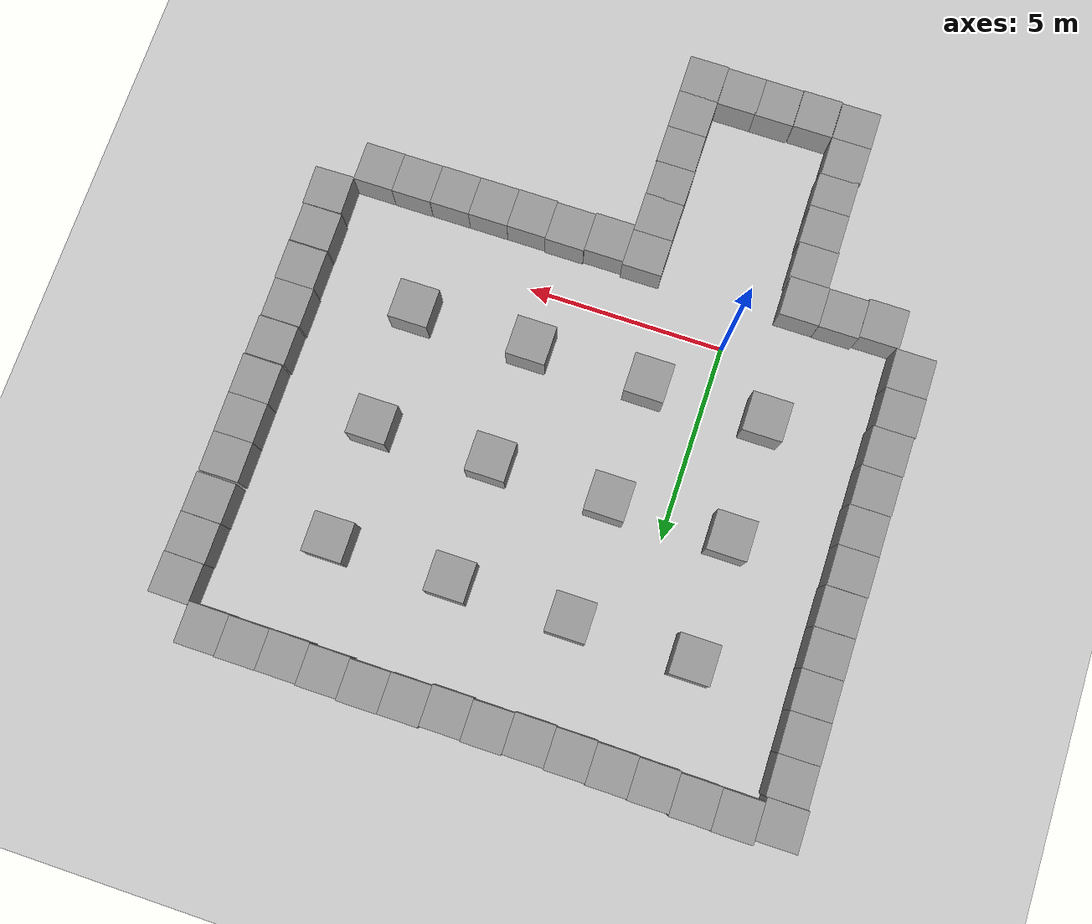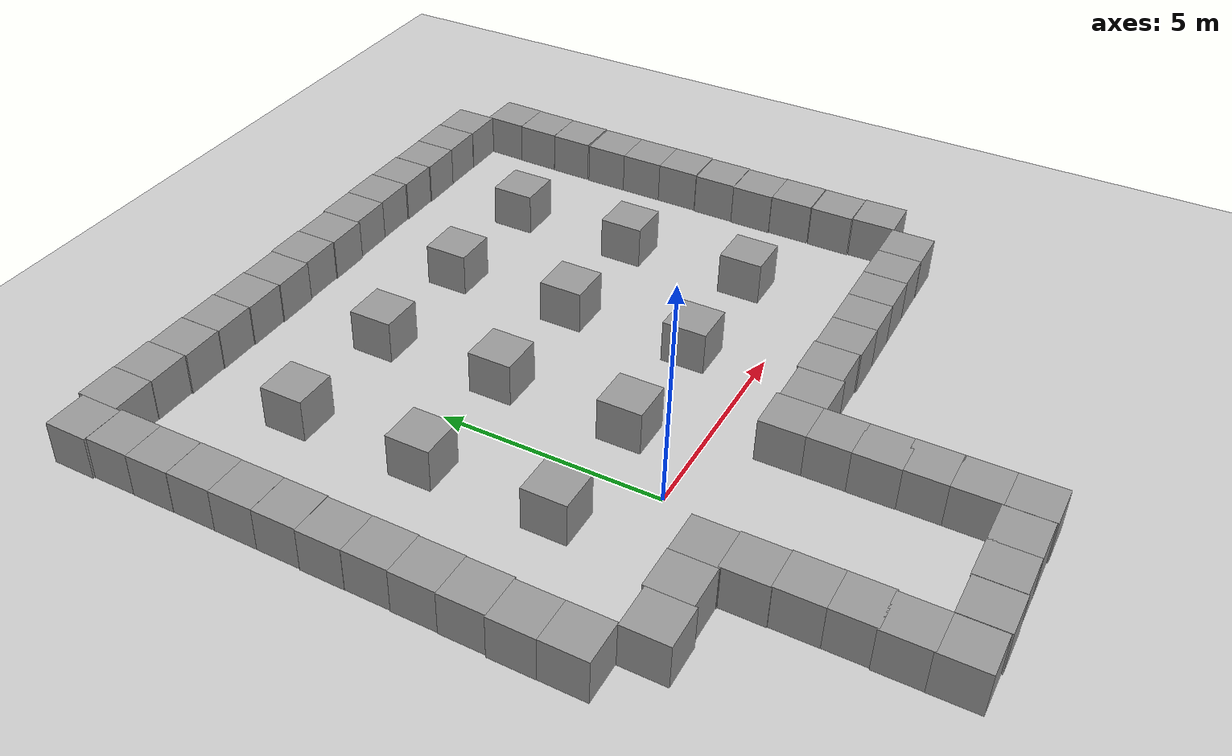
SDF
<sdf version="1.6">
 <world name="default">
  <light name="sun" type="directional">
   <pose>0 0 10 0 -0 0</pose>
   <diffuse>0.8 0.8 0.8 1</diffuse>
   <specular>0.2 0.2 0.2 1</specular>
   <attenuation>
    <range>1000</range>
    <constant>0.9</constant>
    <linear>0.01</linear>
    <quadratic>0.001</quadratic>
   </attenuation>
   <direction>-0.5 0.1 -0.9</direction>
  </light>
  <model name="ground_plane">
   <static>1</static>
   <link name="link">
    <collision name="collision">
     <geometry><plane><normal>0 0 1</normal><size>100 100</size></plane></geometry>
     <surface><friction><ode><mu>100</mu><mu2>50</mu2></ode></friction></surface>
    </collision>
    <visual name="visual">
     <cast_shadows>0</cast_shadows>
     <geometry><plane><normal>0 0 1</normal><size>100 100</size></plane></geometry>
     <material>
      <script><uri>file://media/materials/scripts/gazebo.material</uri><name>Gazebo/Grey</name></script>
     </material>
    </visual>
    <velocity_decay><linear>0</linear><angular>0</angular></velocity_decay>
   </link>
  </model>
  <physics name="default_physics" default="0" type="ode">
   <max_step_size>0.001</max_step_size>
   <real_time_factor>1</real_time_factor>
   <real_time_update_rate>1000</real_time_update_rate>
  </physics>
  <scene><ambient>0.4 0.4 0.4 1</ambient><background>0.7 0.7 0.7 1</background><shadows>1</shadows></scene>
  <spherical_coordinates>
   <surface_model>EARTH_WGS84</surface_model>
   <latitude_deg>0</latitude_deg>
   <longitude_deg>0</longitude_deg>
   <elevation>0</elevation>
   <heading_deg>0</heading_deg>
  </spherical_coordinates>
  <model name="unit_box_1">
   <pose>7.48187 1.49496 0.5 0 -0 0</pose>
   <link name="link">
    <inertial>
     <mass>1</mass>
     <inertia><ixx>1</ixx><ixy>0</ixy><ixz>0</ixz><iyy>1</iyy><iyz>0</iyz><izz>1</izz></inertia>
    </inertial>
    <collision name="collision"><geometry><box><size>1 1 1</size></box></geometry></collision>
    <visual name="visual">
     <geometry><box><size>1 1 1</size></box></geometry>
     <material>
      <script><uri>file://media/materials/scripts/gazebo.material</uri><name>Gazebo/Grey</name></script>
     </material>
    </visual>
    <velocity_decay><linear>0</linear><angular>0</angular></velocity_decay>
   </link>
   <static>0</static>
  </model>
  <model name="unit_box_2">
   <pose>4.47149 1.48551 0.5 0 -0 0</pose>
   <link name="link">
    <inertial>
     <mass>1</mass>
     <inertia><ixx>1</ixx><ixy>0</ixy><ixz>0</ixz><iyy>1</iyy><iyz>0</iyz><izz>1</izz></inertia>
    </inertial>
    <collision name="collision"><geometry><box><size>1 1 1</size></box></geometry></collision>
    <visual name="visual">
     <geometry><box><size>1 1 1</size></box></geometry>
     <material>
      <script><uri>file://media/materials/scripts/gazebo.material</uri><name>Gazebo/Grey</name></script>
     </material>
    </visual>
    <velocity_decay><linear>0</linear><angular>0</angular></velocity_decay>
   </link>
   <static>0</static>
  </model>
  <model name="unit_box_3">
   <pose>1.4769 1.48379 0.5 0 -0 0</pose>
   <link name="link">
    <inertial>
     <mass>1</mass>
     <inertia><ixx>1</ixx><ixy>0</ixy><ixz>0</ixz><iyy>1</iyy><iyz>0</iyz><izz>1</izz></inertia>
    </inertial>
    <collision name="collision"><geometry><box><size>1 1 1</size></box></geometry></collision>
    <visual name="visual">
     <geometry><box><size>1 1 1</size></box></geometry>
     <material>
      <script><uri>file://media/materials/scripts/gazebo.material</uri><name>Gazebo/Grey</name></script>
     </material>
    </visual>
    <velocity_decay><linear>0</linear><angular>0</angular></velocity_decay>
   </link>
   <static>0</static>
  </model>
  <model name="unit_box_4">
   <pose>7.47944 4.53436 0.5 0 -0 0</pose>
   <link name="link">
    <inertial>
     <mass>1</mass>
     <inertia><ixx>1</ixx><ixy>0</ixy><ixz>0</ixz><iyy>1</iyy><iyz>0</iyz><izz>1</izz></inertia>
    </inertial>
    <collision name="collision"><geometry><box><size>1 1 1</size></box></geometry></collision>
    <visual name="visual">
     <geometry><box><size>1 1 1</size></box></geometry>
     <material>
      <script><uri>file://media/materials/scripts/gazebo.material</uri><name>Gazebo/Grey</name></script>
     </material>
    </visual>
    <velocity_decay><linear>0</linear><angular>0</angular></velocity_decay>
   </link>
   <static>0</static>
  </model>
  <model name="unit_box_5">
   <pose>4.4867 4.49816 0.5 0 -0 0</pose>
   <link name="link">
    <inertial>
     <mass>1</mass>
     <inertia><ixx>1</ixx><ixy>0</ixy><ixz>0</ixz><iyy>1</iyy><iyz>0</iyz><izz>1</izz></inertia>
    </inertial>
    <collision name="collision"><geometry><box><size>1 1 1</size></box></geometry></collision>
    <visual name="visual">
     <geometry><box><size>1 1 1</size></box></geometry>
     <material>
      <script><uri>file://media/materials/scripts/gazebo.material</uri><name>Gazebo/Grey</name></script>
     </material>
    </visual>
    <velocity_decay><linear>0</linear><angular>0</angular></velocity_decay>
   </link>
   <static>0</static>
  </model>
  <model name="unit_box_6">
   <pose>1.51126 4.51616 0.5 0 -0 0</pose>
   <link name="link">
    <inertial>
     <mass>1</mass>
     <inertia><ixx>1</ixx><ixy>0</ixy><ixz>0</ixz><iyy>1</iyy><iyz>0</iyz><izz>1</izz></inertia>
    </inertial>
    <collision name="collision"><geometry><box><size>1 1 1</size></box></geometry></collision>
    <visual name="visual">
     <geometry><box><size>1 1 1</size></box></geometry>
     <material>
      <script><uri>file://media/materials/scripts/gazebo.material</uri><name>Gazebo/Grey</name></script>
     </material>
    </visual>
    <velocity_decay><linear>0</linear><angular>0</angular></velocity_decay>
   </link>
   <static>0</static>
  </model>
  <model name="unit_box_7">
   <pose>7.49678 7.51065 0.5 0 -0 0</pose>
   <link name="link">
    <inertial>
     <mass>1</mass>
     <inertia><ixx>1</ixx><ixy>0</ixy><ixz>0</ixz><iyy>1</iyy><iyz>0</iyz><izz>1</izz></inertia>
    </inertial>
    <collision name="collision"><geometry><box><size>1 1 1</size></box></geometry></collision>
    <visual name="visual">
     <geometry><box><size>1 1 1</size></box></geometry>
     <material>
      <script><uri>file://media/materials/scripts/gazebo.material</uri><name>Gazebo/Grey</name></script>
     </material>
    </visual>
    <velocity_decay><linear>0</linear><angular>0</angular></velocity_decay>
   </link>
   <static>0</static>
  </model>
  <model name="unit_box_8">
   <pose>4.47408 7.49427 0.5 0 -0 0</pose>
   <link name="link">
    <inertial>
     <mass>1</mass>
     <inertia><ixx>1</ixx><ixy>0</ixy><ixz>0</ixz><iyy>1</iyy><iyz>0</iyz><izz>1</izz></inertia>
    </inertial>
    <collision name="collision"><geometry><box><size>1 1 1</size></box></geometry></collision>
    <visual name="visual">
     <geometry><box><size>1 1 1</size></box></geometry>
     <material>
      <script><uri>file://media/materials/scripts/gazebo.material</uri><name>Gazebo/Grey</name></script>
     </material>
    </visual>
    <velocity_decay><linear>0</linear><angular>0</angular></velocity_decay>
   </link>
   <static>0</static>
  </model>
  <model name="unit_box_9">
   <pose>1.50449 7.50181 0.5 0 -0 0</pose>
   <link name="link">
    <inertial>
     <mass>1</mass>
     <inertia><ixx>1</ixx><ixy>0</ixy><ixz>0</ixz><iyy>1</iyy><iyz>0</iyz><izz>1</izz></inertia>
    </inertial>
    <collision name="collision"><geometry><box><size>1 1 1</size></box></geometry></collision>
    <visual name="visual">
     <geometry><box><size>1 1 1</size></box></geometry>
     <material>
      <script><uri>file://media/materials/scripts/gazebo.material</uri><name>Gazebo/Grey</name></script>
     </material>
    </visual>
    <velocity_decay><linear>0</linear><angular>0</angular></velocity_decay>
   </link>
   <static>0</static>
  </model>
  <model name="unit_box_1_1">
   <pose>10.4257 1.43948 0.5 0 -0 0.000235</pose>
   <link name="link">
    <inertial>
     <mass>1</mass>
     <inertia><ixx>1</ixx><ixy>0</ixy><ixz>0</ixz><iyy>1</iyy><iyz>0</iyz><izz>1</izz></inertia>
    </inertial>
    <collision name="collision"><geometry><box><size>1 1 1</size></box></geometry></collision>
    <visual name="visual">
     <geometry><box><size>1 1 1</size></box></geometry>
     <material>
      <script><uri>file://media/materials/scripts/gazebo.material</uri><name>Gazebo/Grey</name></script>
     </material>
    </visual>
    <velocity_decay><linear>0</linear><angular>0</angular></velocity_decay>
   </link>
   <static>0</static>
  </model>
  <model name="unit_box_2_1">
   <pose>10.4062 2.43948 0.5 0 -0 0.000237</pose>
   <link name="link">
    <inertial>
     <mass>1</mass>
     <inertia><ixx>1</ixx><ixy>0</ixy><ixz>0</ixz><iyy>1</iyy><iyz>0</iyz><izz>1</izz></inertia>
    </inertial>
    <collision name="collision"><geometry><box><size>1 1 1</size></box></geometry></collision>
    <visual name="visual">
     <geometry><box><size>1 1 1</size></box></geometry>
     <material>
      <script><uri>file://media/materials/scripts/gazebo.material</uri><name>Gazebo/Grey</name></script>
     </material>
    </visual>
    <velocity_decay><linear>0</linear><angular>0</angular></velocity_decay>
   </link>
   <static>0</static>
  </model>
  <model name="unit_box_3_1">
   <pose>10.4315 3.45052 0.5 0 -0 0</pose>
   <link name="link">
    <inertial>
     <mass>1</mass>
     <inertia><ixx>1</ixx><ixy>0</ixy><ixz>0</ixz><iyy>1</iyy><iyz>0</iyz><izz>1</izz></inertia>
    </inertial>
    <collision name="collision"><geometry><box><size>1 1 1</size></box></geometry></collision>
    <visual name="visual">
     <geometry><box><size>1 1 1</size></box></geometry>
     <material>
      <script><uri>file://media/materials/scripts/gazebo.material</uri><name>Gazebo/Grey</name></script>
     </material>
    </visual>
    <velocity_decay><linear>0</linear><angular>0</angular></velocity_decay>
   </link>
   <static>0</static>
  </model>
  <model name="unit_box_4_1">
   <pose>10.4608 4.47156 0.49999 0 -0 2e-06</pose>
   <link name="link">
    <inertial>
     <mass>1</mass>
     <inertia><ixx>1</ixx><ixy>0</ixy><ixz>0</ixz><iyy>1</iyy><iyz>0</iyz><izz>1</izz></inertia>
    </inertial>
    <collision name="collision"><geometry><box><size>1 1 1</size></box></geometry></collision>
    <visual name="visual">
     <geometry><box><size>1 1 1</size></box></geometry>
     <material>
      <script><uri>file://media/materials/scripts/gazebo.material</uri><name>Gazebo/Grey</name></script>
     </material>
    </visual>
    <velocity_decay><linear>0</linear><angular>0</angular></velocity_decay>
   </link>
   <static>0</static>
  </model>
  <model name="unit_box_5_0">
   <pose>10.4621 5.47156 0.5 -1e-06 1e-06 2e-06</pose>
   <link name="link">
    <inertial>
     <mass>1</mass>
     <inertia><ixx>1</ixx><ixy>0</ixy><ixz>0</ixz><iyy>1</iyy><iyz>0</iyz><izz>1</izz></inertia>
    </inertial>
    <collision name="collision"><geometry><box><size>1 1 1</size></box></geometry></collision>
    <visual name="visual">
     <geometry><box><size>1 1 1</size></box></geometry>
     <material>
      <script><uri>file://media/materials/scripts/gazebo.material</uri><name>Gazebo/Grey</name></script>
     </material>
    </visual>
    <velocity_decay><linear>0</linear><angular>0</angular></velocity_decay>
   </link>
   <static>0</static>
  </model>
  <model name="unit_box_6_0">
   <pose>10.4615 6.47156 0.5 0 -0 2e-06</pose>
   <link name="link">
    <inertial>
     <mass>1</mass>
     <inertia><ixx>1</ixx><ixy>0</ixy><ixz>0</ixz><iyy>1</iyy><iyz>0</iyz><izz>1</izz></inertia>
    </inertial>
    <collision name="collision"><geometry><box><size>1 1 1</size></box></geometry></collision>
    <visual name="visual">
     <geometry><box><size>1 1 1</size></box></geometry>
     <material>
      <script><uri>file://media/materials/scripts/gazebo.material</uri><name>Gazebo/Grey</name></script>
     </material>
    </visual>
    <velocity_decay><linear>0</linear><angular>0</angular></velocity_decay>
   </link>
   <static>0</static>
  </model>
  <model name="unit_box_7_0">
   <pose>10.4841 7.51468 0.5 0 0 -0.008371</pose>
   <link name="link">
    <inertial>
     <mass>1</mass>
     <inertia><ixx>1</ixx><ixy>0</ixy><ixz>0</ixz><iyy>1</iyy><iyz>0</iyz><izz>1</izz></inertia>
    </inertial>
    <collision name="collision"><geometry><box><size>1 1 1</size></box></geometry></collision>
    <visual name="visual">
     <geometry><box><size>1 1 1</size></box></geometry>
     <material>
      <script><uri>file://media/materials/scripts/gazebo.material</uri><name>Gazebo/Grey</name></script>
     </material>
    </visual>
    <velocity_decay><linear>0</linear><angular>0</angular></velocity_decay>
   </link>
   <static>0</static>
  </model>
  <model name="unit_box_8_0">
   <pose>10.5042 8.51735 0.5 0 0 -0.014091</pose>
   <link name="link">
    <inertial>
     <mass>1</mass>
     <inertia><ixx>1</ixx><ixy>0</ixy><ixz>0</ixz><iyy>1</iyy><iyz>0</iyz><izz>1</izz></inertia>
    </inertial>
    <collision name="collision"><geometry><box><size>1 1 1</size></box></geometry></collision>
    <visual name="visual">
     <geometry><box><size>1 1 1</size></box></geometry>
     <material>
      <script><uri>file://media/materials/scripts/gazebo.material</uri><name>Gazebo/Grey</name></script>
     </material>
    </visual>
    <velocity_decay><linear>0</linear><angular>0</angular></velocity_decay>
   </link>
   <static>0</static>
  </model>
  <model name="unit_box_9_0">
   <pose>10.5353 9.51863 0.5 0 0 -0.017437</pose>
   <link name="link">
    <inertial>
     <mass>1</mass>
     <inertia><ixx>1</ixx><ixy>0</ixy><ixz>0</ixz><iyy>1</iyy><iyz>0</iyz><izz>1</izz></inertia>
    </inertial>
    <collision name="collision"><geometry><box><size>1 1 1</size></box></geometry></collision>
    <visual name="visual">
     <geometry><box><size>1 1 1</size></box></geometry>
     <material>
      <script><uri>file://media/materials/scripts/gazebo.material</uri><name>Gazebo/Grey</name></script>
     </material>
    </visual>
    <velocity_decay><linear>0</linear><angular>0</angular></velocity_decay>
   </link>
   <static>0</static>
  </model>
  <model name="unit_box_10">
   <pose>9.54325 10.426 0.5 0 0 -0.001837</pose>
   <link name="link">
    <inertial>
     <mass>1</mass>
     <inertia><ixx>1</ixx><ixy>0</ixy><ixz>0</ixz><iyy>1</iyy><iyz>0</iyz><izz>1</izz></inertia>
    </inertial>
    <collision name="collision"><geometry><box><size>1 1 1</size></box></geometry></collision>
    <visual name="visual">
     <geometry><box><size>1 1 1</size></box></geometry>
     <material>
      <script><uri>file://media/materials/scripts/gazebo.material</uri><name>Gazebo/Grey</name></script>
     </material>
    </visual>
    <velocity_decay><linear>0</linear><angular>0</angular></velocity_decay>
   </link>
   <static>0</static>
  </model>
  <model name="unit_box_11">
   <pose>8.5432 10.4401 0.5 0 0 -0.001684</pose>
   <link name="link">
    <inertial>
     <mass>1</mass>
     <inertia><ixx>1</ixx><ixy>0</ixy><ixz>0</ixz><iyy>1</iyy><iyz>0</iyz><izz>1</izz></inertia>
    </inertial>
    <collision name="collision"><geometry><box><size>1 1 1</size></box></geometry></collision>
    <visual name="visual">
     <geometry><box><size>1 1 1</size></box></geometry>
     <material>
      <script><uri>file://media/materials/scripts/gazebo.material</uri><name>Gazebo/Grey</name></script>
     </material>
    </visual>
    <velocity_decay><linear>0</linear><angular>0</angular></velocity_decay>
   </link>
   <static>0</static>
  </model>
  <model name="unit_box_12">
   <pose>7.5431 10.437 0.5 0 0 -0.001509</pose>
   <link name="link">
    <inertial>
     <mass>1</mass>
     <inertia><ixx>1</ixx><ixy>0</ixy><ixz>0</ixz><iyy>1</iyy><iyz>0</iyz><izz>1</izz></inertia>
    </inertial>
    <collision name="collision"><geometry><box><size>1 1 1</size></box></geometry></collision>
    <visual name="visual">
     <geometry><box><size>1 1 1</size></box></geometry>
     <material>
      <script><uri>file://media/materials/scripts/gazebo.material</uri><name>Gazebo/Grey</name></script>
     </material>
    </visual>
    <velocity_decay><linear>0</linear><angular>0</angular></velocity_decay>
   </link>
   <static>0</static>
  </model>
  <model name="unit_box_13">
   <pose>6.54299 10.4629 0.5 0 0 -0.001209</pose>
   <link name="link">
    <inertial>
     <mass>1</mass>
     <inertia><ixx>1</ixx><ixy>0</ixy><ixz>0</ixz><iyy>1</iyy><iyz>0</iyz><izz>1</izz></inertia>
    </inertial>
    <collision name="collision"><geometry><box><size>1 1 1</size></box></geometry></collision>
    <visual name="visual">
     <geometry><box><size>1 1 1</size></box></geometry>
     <material>
      <script><uri>file://media/materials/scripts/gazebo.material</uri><name>Gazebo/Grey</name></script>
     </material>
    </visual>
    <velocity_decay><linear>0</linear><angular>0</angular></velocity_decay>
   </link>
   <static>0</static>
  </model>
  <model name="unit_box_14">
   <pose>5.54299 10.4924 0.5 0 0 -0.001144</pose>
   <link name="link">
    <inertial>
     <mass>1</mass>
     <inertia><ixx>1</ixx><ixy>0</ixy><ixz>0</ixz><iyy>1</iyy><iyz>0</iyz><izz>1</izz></inertia>
    </inertial>
    <collision name="collision"><geometry><box><size>1 1 1</size></box></geometry></collision>
    <visual name="visual">
     <geometry><box><size>1 1 1</size></box></geometry>
     <material>
      <script><uri>file://media/materials/scripts/gazebo.material</uri><name>Gazebo/Grey</name></script>
     </material>
    </visual>
    <velocity_decay><linear>0</linear><angular>0</angular></velocity_decay>
   </link>
   <static>0</static>
  </model>
  <model name="unit_box_15">
   <pose>4.54297 10.4831 0.5 0 0 -0.001123</pose>
   <link name="link">
    <inertial>
     <mass>1</mass>
     <inertia><ixx>1</ixx><ixy>0</ixy><ixz>0</ixz><iyy>1</iyy><iyz>0</iyz><izz>1</izz></inertia>
    </inertial>
    <collision name="collision"><geometry><box><size>1 1 1</size></box></geometry></collision>
    <visual name="visual">
     <geometry><box><size>1 1 1</size></box></geometry>
     <material>
      <script><uri>file://media/materials/scripts/gazebo.material</uri><name>Gazebo/Grey</name></script>
     </material>
    </visual>
    <velocity_decay><linear>0</linear><angular>0</angular></velocity_decay>
   </link>
   <static>0</static>
  </model>
  <model name="unit_box_16">
   <pose>3.54292 10.4426 0.5 0 0 -0.00112</pose>
   <link name="link">
    <inertial>
     <mass>1</mass>
     <inertia><ixx>1</ixx><ixy>0</ixy><ixz>0</ixz><iyy>1</iyy><iyz>0</iyz><izz>1</izz></inertia>
    </inertial>
    <collision name="collision"><geometry><box><size>1 1 1</size></box></geometry></collision>
    <visual name="visual">
     <geometry><box><size>1 1 1</size></box></geometry>
     <material>
      <script><uri>file://media/materials/scripts/gazebo.material</uri><name>Gazebo/Grey</name></script>
     </material>
    </visual>
    <velocity_decay><linear>0</linear><angular>0</angular></velocity_decay>
   </link>
   <static>0</static>
  </model>
  <model name="unit_box_17">
   <pose>2.54294 10.4689 0.5 0 0 -0.001105</pose>
   <link name="link">
    <inertial>
     <mass>1</mass>
     <inertia><ixx>1</ixx><ixy>0</ixy><ixz>0</ixz><iyy>1</iyy><iyz>0</iyz><izz>1</izz></inertia>
    </inertial>
    <collision name="collision"><geometry><box><size>1 1 1</size></box></geometry></collision>
    <visual name="visual">
     <geometry><box><size>1 1 1</size></box></geometry>
     <material>
      <script><uri>file://media/materials/scripts/gazebo.material</uri><name>Gazebo/Grey</name></script>
     </material>
    </visual>
    <velocity_decay><linear>0</linear><angular>0</angular></velocity_decay>
   </link>
   <static>0</static>
  </model>
  <model name="unit_box_18">
   <pose>1.54289 10.4402 0.5 0 0 -0.001079</pose>
   <link name="link">
    <inertial>
     <mass>1</mass>
     <inertia><ixx>1</ixx><ixy>0</ixy><ixz>0</ixz><iyy>1</iyy><iyz>0</iyz><izz>1</izz></inertia>
    </inertial>
    <collision name="collision"><geometry><box><size>1 1 1</size></box></geometry></collision>
    <visual name="visual">
     <geometry><box><size>1 1 1</size></box></geometry>
     <material>
      <script><uri>file://media/materials/scripts/gazebo.material</uri><name>Gazebo/Grey</name></script>
     </material>
    </visual>
    <velocity_decay><linear>0</linear><angular>0</angular></velocity_decay>
   </link>
   <static>0</static>
  </model>
  <model name="unit_box_19">
   <pose>0.542916 10.4644 0.5 0 1e-06 -0.001079</pose>
   <link name="link">
    <inertial>
     <mass>1</mass>
     <inertia><ixx>1</ixx><ixy>0</ixy><ixz>0</ixz><iyy>1</iyy><iyz>0</iyz><izz>1</izz></inertia>
    </inertial>
    <collision name="collision"><geometry><box><size>1 1 1</size></box></geometry></collision>
    <visual name="visual">
     <geometry><box><size>1 1 1</size></box></geometry>
     <material>
      <script><uri>file://media/materials/scripts/gazebo.material</uri><name>Gazebo/Grey</name></script>
     </material>
    </visual>
    <velocity_decay><linear>0</linear><angular>0</angular></velocity_decay>
   </link>
   <static>0</static>
  </model>
  <model name="unit_box_20">
   <pose>-0.457087 10.4894 0.5 0 0 -0.00104</pose>
   <link name="link">
    <inertial>
     <mass>1</mass>
     <inertia><ixx>1</ixx><ixy>0</ixy><ixz>0</ixz><iyy>1</iyy><iyz>0</iyz><izz>1</izz></inertia>
    </inertial>
    <collision name="collision"><geometry><box><size>1 1 1</size></box></geometry></collision>
    <visual name="visual">
     <geometry><box><size>1 1 1</size></box></geometry>
     <material>
      <script><uri>file://media/materials/scripts/gazebo.material</uri><name>Gazebo/Grey</name></script>
     </material>
    </visual>
    <velocity_decay><linear>0</linear><angular>0</angular></velocity_decay>
   </link>
   <static>0</static>
  </model>
  <model name="unit_box_21">
   <pose>-1.45709 10.5104 0.5 0 0 -0.001071</pose>
   <link name="link">
    <inertial>
     <mass>1</mass>
     <inertia><ixx>1</ixx><ixy>0</ixy><ixz>0</ixz><iyy>1</iyy><iyz>0</iyz><izz>1</izz></inertia>
    </inertial>
    <collision name="collision"><geometry><box><size>1 1 1</size></box></geometry></collision>
    <visual name="visual">
     <geometry><box><size>1 1 1</size></box></geometry>
     <material>
      <script><uri>file://media/materials/scripts/gazebo.material</uri><name>Gazebo/Grey</name></script>
     </material>
    </visual>
    <velocity_decay><linear>0</linear><angular>0</angular></velocity_decay>
   </link>
   <static>0</static>
  </model>
  <model name="unit_box_22">
   <pose>-2.45715 10.5469 0.5 0 0 -0.001088</pose>
   <link name="link">
    <inertial>
     <mass>1</mass>
     <inertia><ixx>1</ixx><ixy>0</ixy><ixz>0</ixz><iyy>1</iyy><iyz>0</iyz><izz>1</izz></inertia>
    </inertial>
    <collision name="collision"><geometry><box><size>1 1 1</size></box></geometry></collision>
    <visual name="visual">
     <geometry><box><size>1 1 1</size></box></geometry>
     <material>
      <script><uri>file://media/materials/scripts/gazebo.material</uri><name>Gazebo/Grey</name></script>
     </material>
    </visual>
    <velocity_decay><linear>0</linear><angular>0</angular></velocity_decay>
   </link>
   <static>0</static>
  </model>
  <model name="unit_box_23">
   <pose>10.4166 0.419065 0.5 0 -0 0</pose>
   <link name="link">
    <inertial>
     <mass>1</mass>
     <inertia><ixx>1</ixx><ixy>0</ixy><ixz>0</ixz><iyy>1</iyy><iyz>0</iyz><izz>1</izz></inertia>
    </inertial>
    <collision name="collision"><geometry><box><size>1 1 1</size></box></geometry></collision>
    <visual name="visual">
     <geometry><box><size>1 1 1</size></box></geometry>
     <material>
      <script><uri>file://media/materials/scripts/gazebo.material</uri><name>Gazebo/Grey</name></script>
     </material>
    </visual>
    <velocity_decay><linear>0</linear><angular>0</angular></velocity_decay>
   </link>
   <static>0</static>
  </model>
  <model name="unit_box_1_0">
   <pose>10.4547 -0.592221 0.5 0 -0 0.018041</pose>
   <link name="link">
    <inertial>
     <mass>1</mass>
     <inertia><ixx>1</ixx><ixy>0</ixy><ixz>0</ixz><iyy>1</iyy><iyz>0</iyz><izz>1</izz></inertia>
    </inertial>
    <collision name="collision"><geometry><box><size>1 1 1</size></box></geometry></collision>
    <visual name="visual">
     <geometry><box><size>1 1 1</size></box></geometry>
     <material>
      <script><uri>file://media/materials/scripts/gazebo.material</uri><name>Gazebo/Grey</name></script>
     </material>
    </visual>
    <velocity_decay><linear>0</linear><angular>0</angular></velocity_decay>
   </link>
   <static>0</static>
  </model>
  <model name="unit_box_2_0">
   <pose>9.46413 -1.56981 0.5 0 -0 0.001952</pose>
   <link name="link">
    <inertial>
     <mass>1</mass>
     <inertia><ixx>1</ixx><ixy>0</ixy><ixz>0</ixz><iyy>1</iyy><iyz>0</iyz><izz>1</izz></inertia>
    </inertial>
    <collision name="collision"><geometry><box><size>1 1 1</size></box></geometry></collision>
    <visual name="visual">
     <geometry><box><size>1 1 1</size></box></geometry>
     <material>
      <script><uri>file://media/materials/scripts/gazebo.material</uri><name>Gazebo/Grey</name></script>
     </material>
    </visual>
    <velocity_decay><linear>0</linear><angular>0</angular></velocity_decay>
   </link>
   <static>0</static>
  </model>
  <model name="unit_box_3_0">
   <pose>8.46402 -1.56734 0.5 0 -0 0.001803</pose>
   <link name="link">
    <inertial>
     <mass>1</mass>
     <inertia><ixx>1</ixx><ixy>0</ixy><ixz>0</ixz><iyy>1</iyy><iyz>0</iyz><izz>1</izz></inertia>
    </inertial>
    <collision name="collision"><geometry><box><size>1 1 1</size></box></geometry></collision>
    <visual name="visual">
     <geometry><box><size>1 1 1</size></box></geometry>
     <material>
      <script><uri>file://media/materials/scripts/gazebo.material</uri><name>Gazebo/Grey</name></script>
     </material>
    </visual>
    <velocity_decay><linear>0</linear><angular>0</angular></velocity_decay>
   </link>
   <static>0</static>
  </model>
  <model name="unit_box_4_0">
   <pose>7.46397 -1.57533 0.5 0 -0 0.001701</pose>
   <link name="link">
    <inertial>
     <mass>1</mass>
     <inertia><ixx>1</ixx><ixy>0</ixy><ixz>0</ixz><iyy>1</iyy><iyz>0</iyz><izz>1</izz></inertia>
    </inertial>
    <collision name="collision"><geometry><box><size>1 1 1</size></box></geometry></collision>
    <visual name="visual">
     <geometry><box><size>1 1 1</size></box></geometry>
     <material>
      <script><uri>file://media/materials/scripts/gazebo.material</uri><name>Gazebo/Grey</name></script>
     </material>
    </visual>
    <velocity_decay><linear>0</linear><angular>0</angular></velocity_decay>
   </link>
   <static>0</static>
  </model>
  <model name="unit_box_5_1">
   <pose>6.46387 -1.5793 0.5 0 -0 0.001554</pose>
   <link name="link">
    <inertial>
     <mass>1</mass>
     <inertia><ixx>1</ixx><ixy>0</ixy><ixz>0</ixz><iyy>1</iyy><iyz>0</iyz><izz>1</izz></inertia>
    </inertial>
    <collision name="collision"><geometry><box><size>1 1 1</size></box></geometry></collision>
    <visual name="visual">
     <geometry><box><size>1 1 1</size></box></geometry>
     <material>
      <script><uri>file://media/materials/scripts/gazebo.material</uri><name>Gazebo/Grey</name></script>
     </material>
    </visual>
    <velocity_decay><linear>0</linear><angular>0</angular></velocity_decay>
   </link>
   <static>0</static>
  </model>
  <model name="unit_box_6_1">
   <pose>5.46387 -1.58377 0.5 0 -0 0.001545</pose>
   <link name="link">
    <inertial>
     <mass>1</mass>
     <inertia><ixx>1</ixx><ixy>0</ixy><ixz>0</ixz><iyy>1</iyy><iyz>0</iyz><izz>1</izz></inertia>
    </inertial>
    <collision name="collision"><geometry><box><size>1 1 1</size></box></geometry></collision>
    <visual name="visual">
     <geometry><box><size>1 1 1</size></box></geometry>
     <material>
      <script><uri>file://media/materials/scripts/gazebo.material</uri><name>Gazebo/Grey</name></script>
     </material>
    </visual>
    <velocity_decay><linear>0</linear><angular>0</angular></velocity_decay>
   </link>
   <static>0</static>
  </model>
  <model name="unit_box_7_1">
   <pose>4.46374 -1.55715 0.5 0 -0 0.001373</pose>
   <link name="link">
    <inertial>
     <mass>1</mass>
     <inertia><ixx>1</ixx><ixy>0</ixy><ixz>0</ixz><iyy>1</iyy><iyz>0</iyz><izz>1</izz></inertia>
    </inertial>
    <collision name="collision"><geometry><box><size>1 1 1</size></box></geometry></collision>
    <visual name="visual">
     <geometry><box><size>1 1 1</size></box></geometry>
     <material>
      <script><uri>file://media/materials/scripts/gazebo.material</uri><name>Gazebo/Grey</name></script>
     </material>
    </visual>
    <velocity_decay><linear>0</linear><angular>0</angular></velocity_decay>
   </link>
   <static>0</static>
  </model>
  <model name="unit_box_8_1">
   <pose>3.46378 -1.59545 0.5 0 -0 0.001354</pose>
   <link name="link">
    <inertial>
     <mass>1</mass>
     <inertia><ixx>1</ixx><ixy>0</ixy><ixz>0</ixz><iyy>1</iyy><iyz>0</iyz><izz>1</izz></inertia>
    </inertial>
    <collision name="collision"><geometry><box><size>1 1 1</size></box></geometry></collision>
    <visual name="visual">
     <geometry><box><size>1 1 1</size></box></geometry>
     <material>
      <script><uri>file://media/materials/scripts/gazebo.material</uri><name>Gazebo/Grey</name></script>
     </material>
    </visual>
    <velocity_decay><linear>0</linear><angular>0</angular></velocity_decay>
   </link>
   <static>0</static>
  </model>
  <model name="unit_box_9_1">
   <pose>2.46362 -1.52947 0.5 0 -0 0.001292</pose>
   <link name="link">
    <inertial>
     <mass>1</mass>
     <inertia><ixx>1</ixx><ixy>0</ixy><ixz>0</ixz><iyy>1</iyy><iyz>0</iyz><izz>1</izz></inertia>
    </inertial>
    <collision name="collision"><geometry><box><size>1 1 1</size></box></geometry></collision>
    <visual name="visual">
     <geometry><box><size>1 1 1</size></box></geometry>
     <material>
      <script><uri>file://media/materials/scripts/gazebo.material</uri><name>Gazebo/Grey</name></script>
     </material>
    </visual>
    <velocity_decay><linear>0</linear><angular>0</angular></velocity_decay>
   </link>
   <static>0</static>
  </model>
  <model name="unit_box_13_0">
   <pose>-1.54112 -1.52563 0.5 0 -0 0.000925</pose>
   <link name="link">
    <inertial>
     <mass>1</mass>
     <inertia><ixx>1</ixx><ixy>0</ixy><ixz>0</ixz><iyy>1</iyy><iyz>0</iyz><izz>1</izz></inertia>
    </inertial>
    <collision name="collision"><geometry><box><size>1 1 1</size></box></geometry></collision>
    <visual name="visual">
     <geometry><box><size>1 1 1</size></box></geometry>
     <material>
      <script><uri>file://media/materials/scripts/gazebo.material</uri><name>Gazebo/Grey</name></script>
     </material>
    </visual>
    <velocity_decay><linear>0</linear><angular>0</angular></velocity_decay>
   </link>
   <static>0</static>
  </model>
  <model name="unit_box_14_0">
   <pose>-2.54113 -1.51611 0.5 0 -0 0.000934</pose>
   <link name="link">
    <inertial>
     <mass>1</mass>
     <inertia><ixx>1</ixx><ixy>0</ixy><ixz>0</ixz><iyy>1</iyy><iyz>0</iyz><izz>1</izz></inertia>
    </inertial>
    <collision name="collision"><geometry><box><size>1 1 1</size></box></geometry></collision>
    <visual name="visual">
     <geometry><box><size>1 1 1</size></box></geometry>
     <material>
      <script><uri>file://media/materials/scripts/gazebo.material</uri><name>Gazebo/Grey</name></script>
     </material>
    </visual>
    <velocity_decay><linear>0</linear><angular>0</angular></velocity_decay>
   </link>
   <static>0</static>
  </model>
  <model name="unit_box_15_0">
   <pose>-3.54108 -1.57619 0.5 0 -0 0.000933</pose>
   <link name="link">
    <inertial>
     <mass>1</mass>
     <inertia><ixx>1</ixx><ixy>0</ixy><ixz>0</ixz><iyy>1</iyy><iyz>0</iyz><izz>1</izz></inertia>
    </inertial>
    <collision name="collision"><geometry><box><size>1 1 1</size></box></geometry></collision>
    <visual name="visual">
     <geometry><box><size>1 1 1</size></box></geometry>
     <material>
      <script><uri>file://media/materials/scripts/gazebo.material</uri><name>Gazebo/Grey</name></script>
     </material>
    </visual>
    <velocity_decay><linear>0</linear><angular>0</angular></velocity_decay>
   </link>
   <static>0</static>
  </model>
  <model name="unit_box_16_0">
   <pose>-4.48516 -0.569699 0.5 0 0 -0.000213</pose>
   <link name="link">
    <inertial>
     <mass>1</mass>
     <inertia><ixx>1</ixx><ixy>0</ixy><ixz>0</ixz><iyy>1</iyy><iyz>0</iyz><izz>1</izz></inertia>
    </inertial>
    <collision name="collision"><geometry><box><size>1 1 1</size></box></geometry></collision>
    <visual name="visual">
     <geometry><box><size>1 1 1</size></box></geometry>
     <material>
      <script><uri>file://media/materials/scripts/gazebo.material</uri><name>Gazebo/Grey</name></script>
     </material>
    </visual>
    <velocity_decay><linear>0</linear><angular>0</angular></velocity_decay>
   </link>
   <static>0</static>
  </model>
  <model name="unit_box_17_0">
   <pose>-4.4901 0.430342 0.5 0 0 -0.000213</pose>
   <link name="link">
    <inertial>
     <mass>1</mass>
     <inertia><ixx>1</ixx><ixy>0</ixy><ixz>0</ixz><iyy>1</iyy><iyz>0</iyz><izz>1</izz></inertia>
    </inertial>
    <collision name="collision"><geometry><box><size>1 1 1</size></box></geometry></collision>
    <visual name="visual">
     <geometry><box><size>1 1 1</size></box></geometry>
     <material>
      <script><uri>file://media/materials/scripts/gazebo.material</uri><name>Gazebo/Grey</name></script>
     </material>
    </visual>
    <velocity_decay><linear>0</linear><angular>0</angular></velocity_decay>
   </link>
   <static>0</static>
  </model>
  <model name="unit_box_18_0">
   <pose>-4.4523 1.43036 0.5 0 0 -0.000212</pose>
   <link name="link">
    <inertial>
     <mass>1</mass>
     <inertia><ixx>1</ixx><ixy>0</ixy><ixz>0</ixz><iyy>1</iyy><iyz>0</iyz><izz>1</izz></inertia>
    </inertial>
    <collision name="collision"><geometry><box><size>1 1 1</size></box></geometry></collision>
    <visual name="visual">
     <geometry><box><size>1 1 1</size></box></geometry>
     <material>
      <script><uri>file://media/materials/scripts/gazebo.material</uri><name>Gazebo/Grey</name></script>
     </material>
    </visual>
    <velocity_decay><linear>0</linear><angular>0</angular></velocity_decay>
   </link>
   <static>0</static>
  </model>
  <model name="unit_box_19_0">
   <pose>-4.43761 2.43036 0.5 0 0 -0.000206</pose>
   <link name="link">
    <inertial>
     <mass>1</mass>
     <inertia><ixx>1</ixx><ixy>0</ixy><ixz>0</ixz><iyy>1</iyy><iyz>0</iyz><izz>1</izz></inertia>
    </inertial>
    <collision name="collision"><geometry><box><size>1 1 1</size></box></geometry></collision>
    <visual name="visual">
     <geometry><box><size>1 1 1</size></box></geometry>
     <material>
      <script><uri>file://media/materials/scripts/gazebo.material</uri><name>Gazebo/Grey</name></script>
     </material>
    </visual>
    <velocity_decay><linear>0</linear><angular>0</angular></velocity_decay>
   </link>
   <static>0</static>
  </model>
  <model name="unit_box_20_0">
   <pose>-4.4204 3.4304 0.5 0 0 -0.00024</pose>
   <link name="link">
    <inertial>
     <mass>1</mass>
     <inertia><ixx>1</ixx><ixy>0</ixy><ixz>0</ixz><iyy>1</iyy><iyz>0</iyz><izz>1</izz></inertia>
    </inertial>
    <collision name="collision"><geometry><box><size>1 1 1</size></box></geometry></collision>
    <visual name="visual">
     <geometry><box><size>1 1 1</size></box></geometry>
     <material>
      <script><uri>file://media/materials/scripts/gazebo.material</uri><name>Gazebo/Grey</name></script>
     </material>
    </visual>
    <velocity_decay><linear>0</linear><angular>0</angular></velocity_decay>
   </link>
   <static>0</static>
  </model>
  <model name="unit_box_21_0">
   <pose>-4.42504 4.43051 0.5 0 0 -0.000298</pose>
   <link name="link">
    <inertial>
     <mass>1</mass>
     <inertia><ixx>1</ixx><ixy>0</ixy><ixz>0</ixz><iyy>1</iyy><iyz>0</iyz><izz>1</izz></inertia>
    </inertial>
    <collision name="collision"><geometry><box><size>1 1 1</size></box></geometry></collision>
    <visual name="visual">
     <geometry><box><size>1 1 1</size></box></geometry>
     <material>
      <script><uri>file://media/materials/scripts/gazebo.material</uri><name>Gazebo/Grey</name></script>
     </material>
    </visual>
    <velocity_decay><linear>0</linear><angular>0</angular></velocity_decay>
   </link>
   <static>0</static>
  </model>
  <model name="unit_box_22_0">
   <pose>-4.40562 5.43442 0.5 0 -0 0.000597</pose>
   <link name="link">
    <inertial>
     <mass>1</mass>
     <inertia><ixx>1</ixx><ixy>0</ixy><ixz>0</ixz><iyy>1</iyy><iyz>0</iyz><izz>1</izz></inertia>
    </inertial>
    <collision name="collision"><geometry><box><size>1 1 1</size></box></geometry></collision>
    <visual name="visual">
     <geometry><box><size>1 1 1</size></box></geometry>
     <material>
      <script><uri>file://media/materials/scripts/gazebo.material</uri><name>Gazebo/Grey</name></script>
     </material>
    </visual>
    <velocity_decay><linear>0</linear><angular>0</angular></velocity_decay>
   </link>
   <static>0</static>
  </model>
  <model name="unit_box_23_0">
   <pose>-4.40455 6.43619 0.5 0 -0 0.004102</pose>
   <link name="link">
    <inertial>
     <mass>1</mass>
     <inertia><ixx>1</ixx><ixy>0</ixy><ixz>0</ixz><iyy>1</iyy><iyz>0</iyz><izz>1</izz></inertia>
    </inertial>
    <collision name="collision"><geometry><box><size>1 1 1</size></box></geometry></collision>
    <visual name="visual">
     <geometry><box><size>1 1 1</size></box></geometry>
     <material>
      <script><uri>file://media/materials/scripts/gazebo.material</uri><name>Gazebo/Grey</name></script>
     </material>
    </visual>
    <velocity_decay><linear>0</linear><angular>0</angular></velocity_decay>
   </link>
   <static>0</static>
  </model>
  <model name="unit_box_24">
   <pose>-4.40296 7.43634 0.5 0 -0 0.004342</pose>
   <link name="link">
    <inertial>
     <mass>1</mass>
     <inertia><ixx>1</ixx><ixy>0</ixy><ixz>0</ixz><iyy>1</iyy><iyz>0</iyz><izz>1</izz></inertia>
    </inertial>
    <collision name="collision"><geometry><box><size>1 1 1</size></box></geometry></collision>
    <visual name="visual">
     <geometry><box><size>1 1 1</size></box></geometry>
     <material>
      <script><uri>file://media/materials/scripts/gazebo.material</uri><name>Gazebo/Grey</name></script>
     </material>
    </visual>
    <velocity_decay><linear>0</linear><angular>0</angular></velocity_decay>
   </link>
   <static>0</static>
  </model>
  <gravity>0 0 -9.8</gravity>
  <magnetic_field>6e-06 2.3e-05 -4.2e-05</magnetic_field>
  <atmosphere type="adiabatic"/>
  <model name="unit_box_0">
   <pose>-4.41226 8.43737 0.499995 0 1e-05 0.006412</pose>
   <link name="link">
    <inertial>
     <mass>1</mass>
     <inertia>
      <ixx>0.166667</ixx>
      <ixy>0</ixy>
      <ixz>0</ixz>
      <iyy>0.166667</iyy>
      <iyz>0</iyz>
      <izz>0.166667</izz>
     </inertia>
    </inertial>
    <collision name="collision"><geometry><box><size>1 1 1</size></box></geometry></collision>
    <visual name="visual">
     <geometry><box><size>1 1 1</size></box></geometry>
     <material>
      <script><name>Gazebo/Grey</name><uri>file://media/materials/scripts/gazebo.material</uri></script>
     </material>
    </visual>
   </link>
  </model>
  <model name="unit_box_25">
   <pose>-3.45734 10.5617 0.499995 0 9e-06 -0.000995</pose>
   <link name="link">
    <inertial>
     <mass>1</mass>
     <inertia>
      <ixx>0.166667</ixx>
      <ixy>0</ixy>
      <ixz>0</ixz>
      <iyy>0.166667</iyy>
      <iyz>0</iyz>
      <izz>0.166667</izz>
     </inertia>
    </inertial>
    <collision name="collision"><geometry><box><size>1 1 1</size></box></geometry></collision>
    <visual name="visual">
     <geometry><box><size>1 1 1</size></box></geometry>
     <material>
      <script><name>Gazebo/Grey</name><uri>file://media/materials/scripts/gazebo.material</uri></script>
     </material>
    </visual>
   </link>
  </model>
  <model name="unit_box_26">
   <pose>-4.41341 9.43755 0.499995 0 1e-05 0.006659</pose>
   <link name="link">
    <inertial>
     <mass>1</mass>
     <inertia>
      <ixx>0.166667</ixx>
      <ixy>0</ixy>
      <ixz>0</ixz>
      <iyy>0.166667</iyy>
      <iyz>0</iyz>
      <izz>0.166667</izz>
     </inertia>
    </inertial>
    <collision name="collision"><geometry><box><size>1 1 1</size></box></geometry></collision>
    <visual name="visual">
     <geometry><box><size>1 1 1</size></box></geometry>
     <material>
      <script><name>Gazebo/Grey</name><uri>file://media/materials/scripts/gazebo.material</uri></script>
     </material>
    </visual>
   </link>
  </model>
  <model name="unit_box_27">
   <pose>-4.45747 10.4411 0.499995 0 -1e-05 -0.000995</pose>
   <link name="link">
    <inertial>
     <mass>1</mass>
     <inertia>
      <ixx>0.166667</ixx>
      <ixy>0</ixy>
      <ixz>0</ixz>
      <iyy>0.166667</iyy>
      <iyz>0</iyz>
      <izz>0.166667</izz>
     </inertia>
    </inertial>
    <collision name="collision"><geometry><box><size>1 1 1</size></box></geometry></collision>
    <visual name="visual">
     <geometry><box><size>1 1 1</size></box></geometry>
     <material>
      <script><name>Gazebo/Grey</name><uri>file://media/materials/scripts/gazebo.material</uri></script>
     </material>
    </visual>
   </link>
  </model>
  <model name="unit_box_28">
   <pose>-1.49615 1.50789 0.499995 1e-05 -0 0</pose>
   <link name="link">
    <inertial>
     <mass>1</mass>
     <inertia>
      <ixx>0.166667</ixx>
      <ixy>0</ixy>
      <ixz>0</ixz>
      <iyy>0.166667</iyy>
      <iyz>0</iyz>
      <izz>0.166667</izz>
     </inertia>
    </inertial>
    <collision name="collision"><geometry><box><size>1 1 1</size></box></geometry></collision>
    <visual name="visual">
     <geometry><box><size>1 1 1</size></box></geometry>
     <material>
      <script><name>Gazebo/Grey</name><uri>file://media/materials/scripts/gazebo.material</uri></script>
     </material>
    </visual>
   </link>
  </model>
  <model name="unit_box_29">
   <pose>-1.50904 4.50967 0.499995 0 1e-05 0</pose>
   <link name="link">
    <inertial>
     <mass>1</mass>
     <inertia>
      <ixx>0.166667</ixx>
      <ixy>0</ixy>
      <ixz>0</ixz>
      <iyy>0.166667</iyy>
      <iyz>0</iyz>
      <izz>0.166667</izz>
     </inertia>
    </inertial>
    <collision name="collision"><geometry><box><size>1 1 1</size></box></geometry></collision>
    <visual name="visual">
     <geometry><box><size>1 1 1</size></box></geometry>
     <material>
      <script><name>Gazebo/Grey</name><uri>file://media/materials/scripts/gazebo.material</uri></script>
     </material>
    </visual>
   </link>
  </model>
  <model name="unit_box_30">
   <pose>-1.52007 7.52998 0.499995 -1e-05 0 0</pose>
   <link name="link">
    <inertial>
     <mass>1</mass>
     <inertia>
      <ixx>0.166667</ixx>
      <ixy>0</ixy>
      <ixz>0</ixz>
      <iyy>0.166667</iyy>
      <iyz>0</iyz>
      <izz>0.166667</izz>
     </inertia>
    </inertial>
    <collision name="collision"><geometry><box><size>1 1 1</size></box></geometry></collision>
    <visual name="visual">
     <geometry><box><size>1 1 1</size></box></geometry>
     <material>
      <script><name>Gazebo/Grey</name><uri>file://media/materials/scripts/gazebo.material</uri></script>
     </material>
    </visual>
   </link>
  </model>
  <model name="unit_box_31">
   <pose>-1.50898 -2.46976 0.5 0 -0 0</pose>
   <link name="link">
    <inertial>
     <mass>1</mass>
     <inertia>
      <ixx>0.166667</ixx>
      <ixy>0</ixy>
      <ixz>0</ixz>
      <iyy>0.166667</iyy>
      <iyz>0</iyz>
      <izz>0.166667</izz>
     </inertia>
    </inertial>
    <collision name="collision"><geometry><box><size>1 1 1</size></box></geometry></collision>
    <visual name="visual">
     <geometry><box><size>1 1 1</size></box></geometry>
     <material>
      <script><name>Gazebo/Grey</name><uri>file://media/materials/scripts/gazebo.material</uri></script>
     </material>
    </visual>
   </link>
  </model>
  <model name="unit_box_32">
   <pose>-1.49104 -3.44868 0.5 0 -0 0</pose>
   <link name="link">
    <inertial>
     <mass>1</mass>
     <inertia>
      <ixx>0.166667</ixx>
      <ixy>0</ixy>
      <ixz>0</ixz>
      <iyy>0.166667</iyy>
      <iyz>0</iyz>
      <izz>0.166667</izz>
     </inertia>
    </inertial>
    <collision name="collision"><geometry><box><size>1 1 1</size></box></geometry></collision>
    <visual name="visual">
     <geometry><box><size>1 1 1</size></box></geometry>
     <material>
      <script><name>Gazebo/Grey</name><uri>file://media/materials/scripts/gazebo.material</uri></script>
     </material>
    </visual>
   </link>
  </model>
  <model name="unit_box_33">
   <pose>-1.48711 -4.36505 0.5 0 -0 0</pose>
   <link name="link">
    <inertial>
     <mass>1</mass>
     <inertia>
      <ixx>0.166667</ixx>
      <ixy>0</ixy>
      <ixz>0</ixz>
      <iyy>0.166667</iyy>
      <iyz>0</iyz>
      <izz>0.166667</izz>
     </inertia>
    </inertial>
    <collision name="collision"><geometry><box><size>1 1 1</size></box></geometry></collision>
    <visual name="visual">
     <geometry><box><size>1 1 1</size></box></geometry>
     <material>
      <script><name>Gazebo/Grey</name><uri>file://media/materials/scripts/gazebo.material</uri></script>
     </material>
    </visual>
   </link>
  </model>
  <model name="unit_box_34">
   <pose>-1.51805 -5.3285 0.5 0 -0 0</pose>
   <link name="link">
    <inertial>
     <mass>1</mass>
     <inertia>
      <ixx>0.166667</ixx>
      <ixy>0</ixy>
      <ixz>0</ixz>
      <iyy>0.166667</iyy>
      <iyz>0</iyz>
      <izz>0.166667</izz>
     </inertia>
    </inertial>
    <collision name="collision"><geometry><box><size>1 1 1</size></box></geometry></collision>
    <visual name="visual">
     <geometry><box><size>1 1 1</size></box></geometry>
     <material>
      <script><name>Gazebo/Grey</name><uri>file://media/materials/scripts/gazebo.material</uri></script>
     </material>
    </visual>
   </link>
  </model>
  <model name="unit_box_35">
   <pose>2.46644 -2.47567 0.5 0 -0 0</pose>
   <link name="link">
    <inertial>
     <mass>1</mass>
     <inertia>
      <ixx>0.166667</ixx>
      <ixy>0</ixy>
      <ixz>0</ixz>
      <iyy>0.166667</iyy>
      <iyz>0</iyz>
      <izz>0.166667</izz>
     </inertia>
    </inertial>
    <collision name="collision"><geometry><box><size>1 1 1</size></box></geometry></collision>
    <visual name="visual">
     <geometry><box><size>1 1 1</size></box></geometry>
     <material>
      <script><name>Gazebo/Grey</name><uri>file://media/materials/scripts/gazebo.material</uri></script>
     </material>
    </visual>
   </link>
  </model>
  <model name="unit_box_36">
   <pose>2.4613 -3.45039 0.5 0 -0 0</pose>
   <link name="link">
    <inertial>
     <mass>1</mass>
     <inertia>
      <ixx>0.166667</ixx>
      <ixy>0</ixy>
      <ixz>0</ixz>
      <iyy>0.166667</iyy>
      <iyz>0</iyz>
      <izz>0.166667</izz>
     </inertia>
    </inertial>
    <collision name="collision"><geometry><box><size>1 1 1</size></box></geometry></collision>
    <visual name="visual">
     <geometry><box><size>1 1 1</size></box></geometry>
     <material>
      <script><name>Gazebo/Grey</name><uri>file://media/materials/scripts/gazebo.material</uri></script>
     </material>
    </visual>
   </link>
  </model>
  <model name="unit_box_37">
   <pose>2.47123 -4.37477 0.5 0 -0 0</pose>
   <link name="link">
    <inertial>
     <mass>1</mass>
     <inertia>
      <ixx>0.166667</ixx>
      <ixy>0</ixy>
      <ixz>0</ixz>
      <iyy>0.166667</iyy>
      <iyz>0</iyz>
      <izz>0.166667</izz>
     </inertia>
    </inertial>
    <collision name="collision"><geometry><box><size>1 1 1</size></box></geometry></collision>
    <visual name="visual">
     <geometry><box><size>1 1 1</size></box></geometry>
     <material>
      <script><name>Gazebo/Grey</name><uri>file://media/materials/scripts/gazebo.material</uri></script>
     </material>
    </visual>
   </link>
  </model>
  <model name="unit_box_38">
   <pose>2.46968 -5.34597 0.5 0 -0 0</pose>
   <link name="link">
    <inertial>
     <mass>1</mass>
     <inertia>
      <ixx>0.166667</ixx>
      <ixy>0</ixy>
      <ixz>0</ixz>
      <iyy>0.166667</iyy>
      <iyz>0</iyz>
      <izz>0.166667</izz>
     </inertia>
    </inertial>
    <collision name="collision"><geometry><box><size>1 1 1</size></box></geometry></collision>
    <visual name="visual">
     <geometry><box><size>1 1 1</size></box></geometry>
     <material>
      <script><name>Gazebo/Grey</name><uri>file://media/materials/scripts/gazebo.material</uri></script>
     </material>
    </visual>
   </link>
  </model>
  <model name="unit_box_39">
   <pose>2.47059 -6.33227 0.5 0 -0 0</pose>
   <link name="link">
    <inertial>
     <mass>1</mass>
     <inertia>
      <ixx>0.166667</ixx>
      <ixy>0</ixy>
      <ixz>0</ixz>
      <iyy>0.166667</iyy>
      <iyz>0</iyz>
      <izz>0.166667</izz>
     </inertia>
    </inertial>
    <collision name="collision"><geometry><box><size>1 1 1</size></box></geometry></collision>
    <visual name="visual">
     <geometry><box><size>1 1 1</size></box></geometry>
     <material>
      <script><name>Gazebo/Grey</name><uri>file://media/materials/scripts/gazebo.material</uri></script>
     </material>
    </visual>
   </link>
  </model>
  <model name="unit_box_40">
   <pose>1.46749 -6.30701 0.5 0 -0 0</pose>
   <link name="link">
    <inertial>
     <mass>1</mass>
     <inertia>
      <ixx>0.166667</ixx>
      <ixy>0</ixy>
      <ixz>0</ixz>
      <iyy>0.166667</iyy>
      <iyz>0</iyz>
      <izz>0.166667</izz>
     </inertia>
    </inertial>
    <collision name="collision"><geometry><box><size>1 1 1</size></box></geometry></collision>
    <visual name="visual">
     <geometry><box><size>1 1 1</size></box></geometry>
     <material>
      <script><name>Gazebo/Grey</name><uri>file://media/materials/scripts/gazebo.material</uri></script>
     </material>
    </visual>
   </link>
  </model>
  <model name="unit_box_41">
   <pose>0.494952 -6.30436 0.5 0 -0 0</pose>
   <link name="link">
    <inertial>
     <mass>1</mass>
     <inertia>
      <ixx>0.166667</ixx>
      <ixy>0</ixy>
      <ixz>0</ixz>
      <iyy>0.166667</iyy>
      <iyz>0</iyz>
      <izz>0.166667</izz>
     </inertia>
    </inertial>
    <collision name="collision"><geometry><box><size>1 1 1</size></box></geometry></collision>
    <visual name="visual">
     <geometry><box><size>1 1 1</size></box></geometry>
     <material>
      <script><name>Gazebo/Grey</name><uri>file://media/materials/scripts/gazebo.material</uri></script>
     </material>
    </visual>
   </link>
  </model>
  <model name="unit_box_42">
   <pose>-0.512492 -6.31927 0.5 0 -0 0</pose>
   <link name="link">
    <inertial>
     <mass>1</mass>
     <inertia>
      <ixx>0.166667</ixx>
      <ixy>0</ixy>
      <ixz>0</ixz>
      <iyy>0.166667</iyy>
      <iyz>0</iyz>
      <izz>0.166667</izz>
     </inertia>
    </inertial>
    <collision name="collision"><geometry><box><size>1 1 1</size></box></geometry></collision>
    <visual name="visual">
     <geometry><box><size>1 1 1</size></box></geometry>
     <material>
      <script><name>Gazebo/Grey</name><uri>file://media/materials/scripts/gazebo.material</uri></script>
     </material>
    </visual>
   </link>
  </model>
  <model name="unit_box_43">
   <pose>-1.52398 -6.28995 0.5 0 -0 0</pose>
   <link name="link">
    <inertial>
     <mass>1</mass>
     <inertia>
      <ixx>0.166667</ixx>
      <ixy>0</ixy>
      <ixz>0</ixz>
      <iyy>0.166667</iyy>
      <iyz>0</iyz>
      <izz>0.166667</izz>
     </inertia>
    </inertial>
    <collision name="collision"><geometry><box><size>1 1 1</size></box></geometry></collision>
    <visual name="visual">
     <geometry><box><size>1 1 1</size></box></geometry>
     <material>
      <script><name>Gazebo/Grey</name><uri>file://media/materials/scripts/gazebo.material</uri></script>
     </material>
    </visual>
   </link>
  </model>
 </world>
</sdf>
